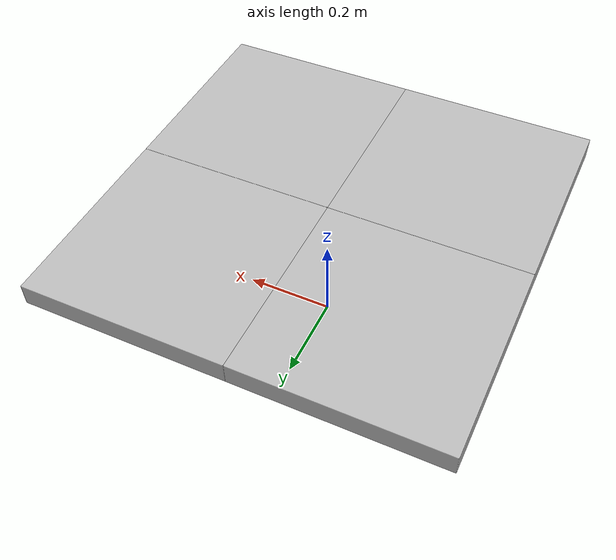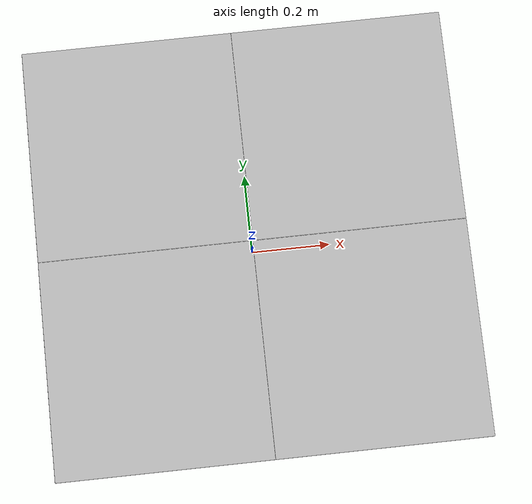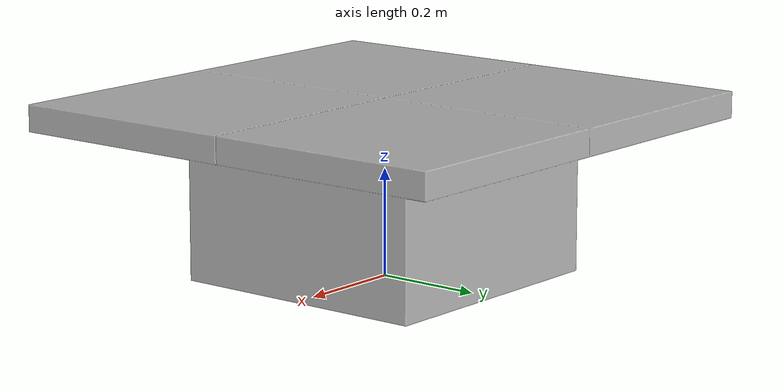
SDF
<?xml version='1.0'?>
<sdf version='1.4'>
  <model name='589'>
    <pose>0 0 0 0 0 0</pose>
    <static>true</static>
    <link name='link'>
      <collision name='collision'>
        <pose>0 0 0 0 0 0</pose>
        <geometry>
          <box>
            <size>0.9 0.9 2</size>
          </box>
        </geometry>
      </collision>
      <visual name='visual'>
        <pose>0 0 0 0 0 0</pose>
        <geometry>
          <mesh><uri>model://589/589.dae</uri></mesh>
        </geometry>
      </visual>
    </link>
  </model>
</sdf>
